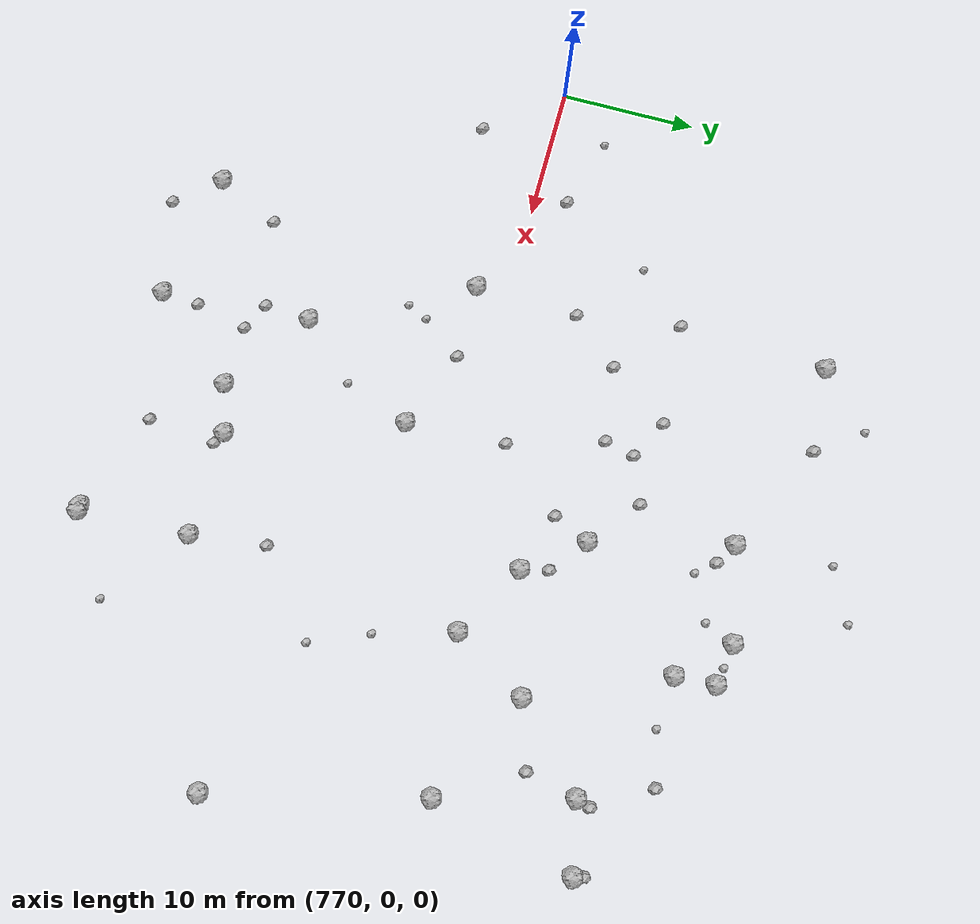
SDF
<sdf version="1.6">
 <world name="default">
  <include><uri>model://sun</uri></include>
  <model name="rock1_20_4">
   <include><uri>model://rock1</uri><pose>792.4574485743993 -13.702344838574145 0.5 0 0 0</pose></include>
  </model>
  <model name="rock1_20_5">
   <include><uri>model://rock1</uri><pose>783.6347174495835 -23.09615761780634 0.5 0 0 0</pose></include>
  </model>
  <model name="rock1_20_6">
   <include><uri>model://rock1</uri><pose>798.1011686019191 -4.746910288498622 0.5 0 0 0</pose></include>
  </model>
  <model name="rock1_20_7">
   <include><uri>model://rock1</uri><pose>825.1610528134069 14.444230429571675 0.5 0 0 0</pose></include>
  </model>
  <model name="rock1_20_8">
   <include><uri>model://rock1</uri><pose>803.0943972861772 9.968117501415072 0.5 0 0 0</pose></include>
  </model>
  <model name="rock1_20_9">
   <include><uri>model://rock1</uri><pose>809.8885683383035 -17.266814506375983 0.5 0 0 0</pose></include>
  </model>
  <model name="rock1_20_10">
   <include><uri>model://rock1</uri><pose>786.3185759455225 23.607519452824093 0.5 0 0 0</pose></include>
  </model>
  <model name="rock1_20_11">
   <include><uri>model://rock1</uri><pose>811.5322292409503 2.8327211236213117 0.5 0 0 0</pose></include>
  </model>
  <model name="rock1_20_12">
   <include><uri>model://rock1</uri><pose>786.8104442628847 -2.4876101475634123 0.5 0 0 0</pose></include>
  </model>
  <model name="rock1_20_13">
   <include><uri>model://rock1</uri><pose>800.5972898472776 20.070719887233956 0.5 0 0 0</pose></include>
  </model>
  <model name="rock1_20_14">
   <include><uri>model://rock1</uri><pose>826.4906146393027 -11.226443017657214 0.5 0 0 0</pose></include>
  </model>
  <model name="rock1_20_15">
   <include><uri>model://rock1</uri><pose>809.9123591933884 -25.352584218317517 0.5 0 0 0</pose></include>
  </model>
  <model name="rock1_20_16">
   <include><uri>model://rock1</uri><pose>802.2170829318164 -17.111381587935064 0.5 0 0 0</pose></include>
  </model>
  <model name="rock1_20_17">
   <include><uri>model://rock1</uri><pose>798.7319550547602 -18.19574160141851 0.5 0 0 0</pose></include>
  </model>
  <model name="rock1_20_18">
   <include><uri>model://rock1</uri><pose>810.3989635141379 20.888245738896437 0.5 0 0 0</pose></include>
  </model>
  <model name="rock1_20_19">
   <include><uri>model://rock1</uri><pose>807.3953362186801 21.4048884899748 0.5 0 0 0</pose></include>
  </model>
  <model name="rock1_20_20">
   <include><uri>model://rock1</uri><pose>806.2121663680205 5.875263996447281 0.5 0 0 0</pose></include>
  </model>
  <model name="rock1_20_21">
   <include><uri>model://rock1</uri><pose>810.306280057225 -25.38117605123486 0.5 0 0 0</pose></include>
  </model>
  <model name="rock1_20_22">
   <include><uri>model://rock1</uri><pose>822.7186940589336 4.031622373288485 0.5 0 0 0</pose></include>
  </model>
  <model name="rock1_20_23">
   <include><uri>model://rock1</uri><pose>820.2136794096966 13.45293896735182 0.5 0 0 0</pose></include>
  </model>
  <model name="rock1_20_24">
   <include><uri>model://rock1</uri><pose>814.7231200215324 8.216588718897285 0.5 0 0 0</pose></include>
  </model>
  <model name="rock1_20_25">
   <include><uri>model://rock1</uri><pose>810.5738451493017 17.96561475796947 0.5 0 0 0</pose></include>
  </model>
  <model name="rock1_20_26">
   <include><uri>model://rock1</uri><pose>793.2466137722697 -24.676405287962957 0.5 0 0 0</pose></include>
  </model>
  <model name="rock2_20_0">
   <include><uri>model://rock2</uri><pose>786.977173444953 5.195220611803968 0.3 0 0 0</pose></include>
  </model>
  <model name="rock2_20_1">
   <include><uri>model://rock2</uri><pose>793.3044989296558 13.212537877559221 0.3 0 0 0</pose></include>
  </model>
  <model name="rock2_20_2">
   <include><uri>model://rock2</uri><pose>785.817791955262 12.788650962994822 0.3 0 0 0</pose></include>
  </model>
  <model name="rock2_20_3">
   <include><uri>model://rock2</uri><pose>796.1603883991005 11.698982387416116 0.3 0 0 0</pose></include>
  </model>
  <model name="rock2_20_4">
   <include><uri>model://rock2</uri><pose>803.093299528365 -17.61413290161374 0.3 0 0 0</pose></include>
  </model>
  <model name="rock2_20_5">
   <include><uri>model://rock2</uri><pose>792.5047070720719 24.086873050686506 0.3 0 0 0</pose></include>
  </model>
  <model name="rock2_20_6">
   <include><uri>model://rock2</uri><pose>819.3899355201154 9.79094658777175 0.3 0 0 0</pose></include>
  </model>
  <model name="rock2_20_7">
   <include><uri>model://rock2</uri><pose>786.1990236990396 -26.231724061848055 0.3 0 0 0</pose></include>
  </model>
  <model name="rock2_20_8">
   <include><uri>model://rock2</uri><pose>792.304657412495 -2.443876051071431 0.3 0 0 0</pose></include>
  </model>
  <model name="rock2_20_9">
   <include><uri>model://rock2</uri><pose>802.1364562359382 19.143047235984398 0.3 0 0 0</pose></include>
  </model>
  <model name="rock2_20_10">
   <include><uri>model://rock2</uri><pose>820.518660067083 14.517043464791094 0.3 0 0 0</pose></include>
  </model>
  <model name="rock2_20_11">
   <include><uri>model://rock2</uri><pose>795.64842632411 9.502234525578999 0.3 0 0 0</pose></include>
  </model>
  <model name="rock2_20_12">
   <include><uri>model://rock2</uri><pose>797.6913836339872 2.650458171326541 0.3 0 0 0</pose></include>
  </model>
  <model name="rock2_20_13">
   <include><uri>model://rock2</uri><pose>794.2666388466289 -18.07979860829098 0.3 0 0 0</pose></include>
  </model>
  <model name="rock2_20_14">
   <include><uri>model://rock2</uri><pose>774.3575928022025 -5.314716967455887 0.3 0 0 0</pose></include>
  </model>
  <model name="rock2_20_15">
   <include><uri>model://rock2</uri><pose>824.9793635775641 15.170452956793625 0.3 0 0 0</pose></include>
  </model>
  <model name="rock2_20_16">
   <include><uri>model://rock2</uri><pose>790.120619567414 8.758891991160162 0.3 0 0 0</pose></include>
  </model>
  <model name="rock2_20_17">
   <include><uri>model://rock2</uri><pose>792.2102033343607 -17.084396504944102 0.3 0 0 0</pose></include>
  </model>
  <model name="rock2_20_18">
   <include><uri>model://rock2</uri><pose>801.8661244706757 7.348401107186447 0.3 0 0 0</pose></include>
  </model>
  <model name="rock2_20_19">
   <include><uri>model://rock2</uri><pose>799.4899626952013 12.97179507655629 0.3 0 0 0</pose></include>
  </model>
  <model name="rock2_20_20">
   <include><uri>model://rock2</uri><pose>785.778969767756 -18.42297849539035 0.3 0 0 0</pose></include>
  </model>
  <model name="rock2_20_21">
   <include><uri>model://rock2</uri><pose>778.5298041770984 2.3415873748295155 0.3 0 0 0</pose></include>
  </model>
  <model name="rock2_20_22">
   <include><uri>model://rock2</uri><pose>805.7077974892771 7.900483998572078 0.3 0 0 0</pose></include>
  </model>
  <model name="rock2_20_23">
   <include><uri>model://rock2</uri><pose>818.1691244476824 18.49888584229383 0.3 0 0 0</pose></include>
  </model>
  <model name="rock2_20_24">
   <include><uri>model://rock2</uri><pose>793.4049504502386 -21.9182992571333 0.3 0 0 0</pose></include>
  </model>
  <model name="rock2_20_25">
   <include><uri>model://rock2</uri><pose>802.6251076458914 -22.6058192102218 0.3 0 0 0</pose></include>
  </model>
  <model name="rock2_20_26">
   <include><uri>model://rock2</uri><pose>809.2001820906371 -11.736015292340166 0.3 0 0 0</pose></include>
  </model>
  <model name="rock3_20_0">
   <include><uri>model://rock3</uri><pose>773.2536636805264 3.932843624866578 0.2 0 0 0</pose></include>
  </model>
  <model name="rock3_20_1">
   <include><uri>model://rock3</uri><pose>803.9665501212685 28.903116797584794 0.2 0 0 0</pose></include>
  </model>
  <model name="rock3_20_2">
   <include><uri>model://rock3</uri><pose>790.099217148019 -5.44313728186583 0.2 0 0 0</pose></include>
  </model>
  <model name="rock3_20_3">
   <include><uri>model://rock3</uri><pose>814.3303957134941 17.646737830810096 0.2 0 0 0</pose></include>
  </model>
  <model name="rock3_20_4">
   <include><uri>model://rock3</uri><pose>813.1965203500134 -2.946733366249802 0.2 0 0 0</pose></include>
  </model>
  <model name="rock3_20_5">
   <include><uri>model://rock3</uri><pose>790.1387775189423 27.375121192439778 0.2 0 0 0</pose></include>
  </model>
  <model name="rock3_20_6">
   <include><uri>model://rock3</uri><pose>814.951365310122 -7.161989204737395 0.2 0 0 0</pose></include>
  </model>
  <model name="rock3_20_7">
   <include><uri>model://rock3</uri><pose>796.3041426785398 -9.617171674119845 0.2 0 0 0</pose></include>
  </model>
  <model name="rock3_20_8">
   <include><uri>model://rock3</uri><pose>782.2356810913151 9.123032284885802 0.2 0 0 0</pose></include>
  </model>
  <model name="rock3_20_9">
   <include><uri>model://rock3</uri><pose>789.3898177714599 -6.945630792974569 0.2 0 0 0</pose></include>
  </model>
  <model name="rock3_20_10">
   <include><uri>model://rock3</uri><pose>815.8044179109869 -21.93874912755256 0.2 0 0 0</pose></include>
  </model>
  <model name="rock3_20_11">
   <include><uri>model://rock3</uri><pose>803.2337858430708 17.789746539483588 0.2 0 0 0</pose></include>
  </model>
  <model name="rock3_20_12">
   <include><uri>model://rock3</uri><pose>806.4198568389447 19.303177837911797 0.2 0 0 0</pose></include>
  </model>
  <model name="rock3_20_13">
   <include><uri>model://rock3</uri><pose>809.1350261206882 21.20319039249108 0.2 0 0 0</pose></include>
  </model>
  <model name="rock3_20_14">
   <include><uri>model://rock3</uri><pose>800.2123981714777 27.089921450283626 0.2 0 0 0</pose></include>
  </model>
 </world>
</sdf>
